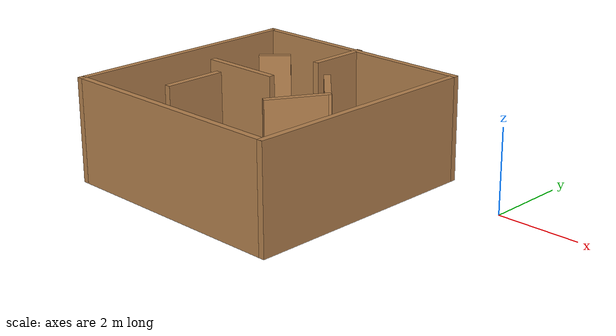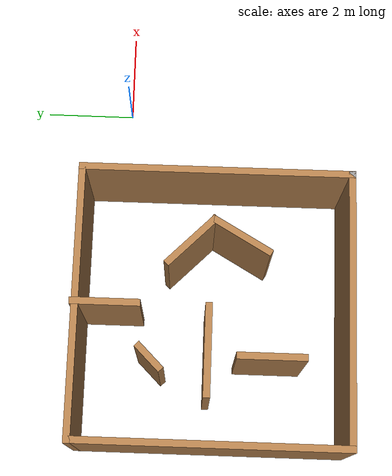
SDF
<?xml version='1.0'?>
<sdf version='1.7'>
  <model name='little_room_walls'>
    <pose>-3.9875 -2.02389 0 0 -0 0</pose>
    <link name='Wall_1'>
      <collision name='Wall_1_Collision'>
        <geometry>
          <box>
            <size>6 0.15 2.5</size>
          </box>
        </geometry>
        <pose>0 0 1.25 0 -0 0</pose>
      </collision>
      <visual name='Wall_1_Visual'>
        <pose>0 0 1.25 0 -0 0</pose>
        <geometry>
          <box>
            <size>6 0.15 2.5</size>
          </box>
        </geometry>
        <material>
          <script>
            <uri>file://media/materials/scripts/gazebo.material</uri>
            <name>Gazebo/Wood</name>
          </script>
          <ambient>1 1 1 1</ambient>
        </material>
        <meta>
          <layer>0</layer>
        </meta>
      </visual>
      <pose>-0.9875 -2.94611 0 0 -0 0</pose>
    </link>
    <link name='Wall_10'>
      <collision name='Wall_10_Collision'>
        <geometry>
          <box>
            <size>2 0.15 2.5</size>
          </box>
        </geometry>
        <pose>0 0 1.25 0 -0 0</pose>
      </collision>
      <visual name='Wall_10_Visual'>
        <pose>0 0 1.25 0 -0 0</pose>
        <geometry>
          <box>
            <size>2 0.15 2.5</size>
          </box>
        </geometry>
        <material>
          <script>
            <uri>file://media/materials/scripts/gazebo.material</uri>
            <name>Gazebo/Wood</name>
          </script>
          <ambient>1 1 1 1</ambient>
        </material>
        <meta>
          <layer>0</layer>
        </meta>
      </visual>
      <pose>-1.97078 0.070633 0 0 -0 0</pose>
    </link>
    <link name='Wall_12'>
      <collision name='Wall_12_Collision'>
        <geometry>
          <box>
            <size>1.5 0.15 2.5</size>
          </box>
        </geometry>
        <pose>0 0 1.25 0 -0 0</pose>
      </collision>
      <visual name='Wall_12_Visual'>
        <pose>0 0 1.25 0 -0 0</pose>
        <geometry>
          <box>
            <size>1.5 0.15 2.5</size>
          </box>
        </geometry>
        <material>
          <script>
            <uri>file://media/materials/scripts/gazebo.material</uri>
            <name>Gazebo/Wood</name>
          </script>
          <ambient>1 1 1 1</ambient>
        </material>
        <meta>
          <layer>0</layer>
        </meta>
      </visual>
      <pose>0.365226 0.480452 0 0 -0 -0.785398</pose>
    </link>
    <link name='Wall_13'>
      <collision name='Wall_13_Collision'>
        <geometry>
          <box>
            <size>1.5 0.15 2.5</size>
          </box>
        </geometry>
        <pose>0 0 1.25 0 -0 0</pose>
      </collision>
      <visual name='Wall_13_Visual'>
        <pose>0 0 1.25 0 -0 0</pose>
        <geometry>
          <box>
            <size>1.5 0.15 2.5</size>
          </box>
        </geometry>
        <material>
          <script>
            <uri>file://media/materials/scripts/gazebo.material</uri>
            <name>Gazebo/Wood</name>
          </script>
          <ambient>1 1 1 1</ambient>
        </material>
        <meta>
          <layer>0</layer>
        </meta>
      </visual>
      <pose>0.505023 -0.581412 0 0 -0 -2.0944</pose>
    </link>
    <link name='Wall_15'>
      <collision name='Wall_15_Collision'>
        <geometry>
          <box>
            <size>1.5 0.15 2.5</size>
          </box>
        </geometry>
        <pose>0 0 1.25 0 -0 0</pose>
      </collision>
      <visual name='Wall_15_Visual'>
        <pose>0 0 1.25 0 -0 0</pose>
        <geometry>
          <box>
            <size>1.5 0.15 2.5</size>
          </box>
        </geometry>
        <material>
          <script>
            <uri>file://media/materials/scripts/gazebo.material</uri>
            <name>Gazebo/Wood</name>
          </script>
          <ambient>1 1 1 1</ambient>
        </material>
        <meta>
          <layer>0</layer>
        </meta>
      </visual>
      <pose>-2.06985 -1.27735 0 0 -0 -1.5708</pose>
    </link>
    <link name='Wall_17'>
      <collision name='Wall_17_Collision'>
        <geometry>
          <box>
            <size>0.75 0.15 2.5</size>
          </box>
        </geometry>
        <pose>0 0 1.25 0 -0 0</pose>
      </collision>
      <visual name='Wall_17_Visual'>
        <pose>0 0 1.25 0 -0 0</pose>
        <geometry>
          <box>
            <size>0.75 0.15 2.5</size>
          </box>
        </geometry>
        <material>
          <script>
            <uri>file://media/materials/scripts/gazebo.material</uri>
            <name>Gazebo/Wood</name>
          </script>
          <ambient>1 1 1 1</ambient>
        </material>
        <meta>
          <layer>0</layer>
        </meta>
      </visual>
      <pose>-2.15962 1.29624 0 0 -0 -2.35619</pose>
    </link>
    <link name='Wall_2'>
      <collision name='Wall_2_Collision'>
        <geometry>
          <box>
            <size>0.15 0.15 2.5</size>
          </box>
        </geometry>
        <pose>0 0 1.25 0 -0 0</pose>
      </collision>
      <visual name='Wall_2_Visual'>
        <pose>0 0 1.25 0 -0 0</pose>
        <geometry>
          <box>
            <size>0.15 0.15 2.5</size>
          </box>
        </geometry>
        <material>
          <script>
            <uri>file://media/materials/scripts/gazebo.material</uri>
            <name>Gazebo/Grey</name>
          </script>
          <ambient>1 1 1 1</ambient>
        </material>
        <meta>
          <layer>0</layer>
        </meta>
      </visual>
      <pose>1.9375 -2.94611 0 0 -0 0</pose>
    </link>
    <link name='Wall_3'>
      <collision name='Wall_3_Collision'>
        <geometry>
          <box>
            <size>6 0.15 2.5</size>
          </box>
        </geometry>
        <pose>0 0 1.25 0 -0 0</pose>
      </collision>
      <visual name='Wall_3_Visual'>
        <pose>0 0 1.25 0 -0 0</pose>
        <geometry>
          <box>
            <size>6 0.15 2.5</size>
          </box>
        </geometry>
        <material>
          <script>
            <uri>file://media/materials/scripts/gazebo.material</uri>
            <name>Gazebo/Wood</name>
          </script>
          <ambient>1 1 1 1</ambient>
        </material>
        <meta>
          <layer>0</layer>
        </meta>
      </visual>
      <pose>1.9375 -0.021114 0 0 -0 1.5708</pose>
    </link>
    <link name='Wall_4'>
      <collision name='Wall_4_Collision'>
        <geometry>
          <box>
            <size>6 0.15 2.5</size>
          </box>
        </geometry>
        <pose>0 0 1.25 0 -0 0</pose>
      </collision>
      <visual name='Wall_4_Visual'>
        <pose>0 0 1.25 0 -0 0</pose>
        <geometry>
          <box>
            <size>6 0.15 2.5</size>
          </box>
        </geometry>
        <material>
          <script>
            <uri>file://media/materials/scripts/gazebo.material</uri>
            <name>Gazebo/Wood</name>
          </script>
          <ambient>1 1 1 1</ambient>
        </material>
        <meta>
          <layer>0</layer>
        </meta>
      </visual>
      <pose>-0.9875 2.90389 0 0 -0 3.14159</pose>
    </link>
    <link name='Wall_5'>
      <collision name='Wall_5_Collision'>
        <geometry>
          <box>
            <size>6 0.15 2.5</size>
          </box>
        </geometry>
        <pose>0 0 1.25 0 -0 0</pose>
      </collision>
      <visual name='Wall_5_Visual'>
        <pose>0 0 1.25 0 -0 0</pose>
        <geometry>
          <box>
            <size>6 0.15 2.5</size>
          </box>
        </geometry>
        <material>
          <script>
            <uri>file://media/materials/scripts/gazebo.material</uri>
            <name>Gazebo/Wood</name>
          </script>
          <ambient>1 1 1 1</ambient>
        </material>
        <meta>
          <layer>0</layer>
        </meta>
      </visual>
      <pose>-3.9125 -0.021114 0 0 -0 -1.5708</pose>
    </link>
    <link name='Wall_8'>
      <collision name='Wall_8_Collision'>
        <geometry>
          <box>
            <size>1.5 0.15 2.5</size>
          </box>
        </geometry>
        <pose>0 0 1.25 0 -0 0</pose>
      </collision>
      <visual name='Wall_8_Visual'>
        <pose>0 0 1.25 0 -0 0</pose>
        <geometry>
          <box>
            <size>1.5 0.15 2.5</size>
          </box>
        </geometry>
        <material>
          <script>
            <uri>file://media/materials/scripts/gazebo.material</uri>
            <name>Gazebo/Wood</name>
          </script>
          <ambient>1 1 1 1</ambient>
        </material>
        <meta>
          <layer>0</layer>
        </meta>
      </visual>
      <pose>-1.02978 2.27111 0 0 -0 -1.5708</pose>
    </link>
    <static>1</static>
  </model>
</sdf>
